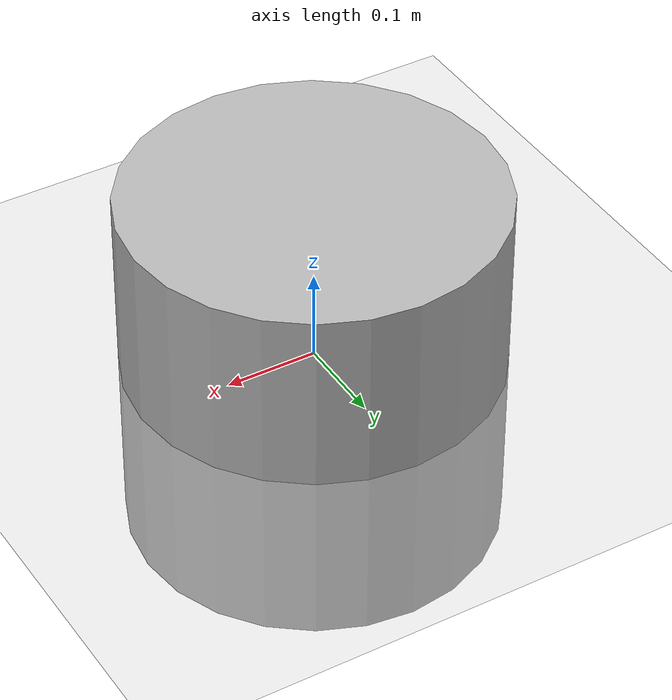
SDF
<?xml version="1.0"?>
<sdf version="1.4">
  <world name="target_spawn_world">

    <!-- Ground Plane -->
    <include>
      <uri>model://ground_plane</uri>
    </include>

    <include>
      <uri>model://sun</uri>
    </include>

    <model name="target_1">
      <pose>0 0 0 0 0 0</pose>
      <link name="link">
        <collision name="collision">
          <geometry>
            <cylinder>
              <radius> 0.001 </radius>
              <length> 0.4 </length>
            </cylinder>
          </geometry>
        </collision>

        <visual name="visual">
          <geometry>
            <cylinder>
              <radius> 0.2 </radius>
              <length> 0.4 </length>
            </cylinder>
          </geometry>
        </visual>
      </link>

      <plugin name="animated_box" filename="libanimated_box.so"/>
    </model>

    <model name="target_2">
      <pose>0 0 0 0 0 0</pose>
      <link name="link">
        <collision name="collision">
          <geometry>
            <cylinder>
              <radius> 0.001 </radius>
              <length> 0.4 </length>
            </cylinder>
          </geometry>
        </collision>

        <visual name="visual">
          <geometry>
            <cylinder>
              <radius> 0.2 </radius>
              <length> 0.4 </length>
            </cylinder>
          </geometry>
        </visual>
      </link>

      <plugin name="animated_box" filename="libanimated_box.so"/>
    </model>

    <model name="target_3">
      <pose>0 0 0 0 0 0</pose>
      <link name="link">
        <collision name="collision">
          <geometry>
            <cylinder>
              <radius> 0.001 </radius>
              <length> 0.4 </length>
            </cylinder>
          </geometry>
        </collision>

        <visual name="visual">
          <geometry>
            <cylinder>
              <radius> 0.2 </radius>
              <length> 0.4 </length>
            </cylinder>
          </geometry>
        </visual>
      </link>

      <plugin name="animated_box" filename="libanimated_box.so"/>
    </model>

    <model name="target_4">
      <pose>0 0 0 0 0 0</pose>
      <link name="link">
        <collision name="collision">
          <geometry>
            <cylinder>
              <radius> 0.001 </radius>
              <length> 0.4 </length>
            </cylinder>
          </geometry>
        </collision>

        <visual name="visual">
          <geometry>
            <cylinder>
              <radius> 0.2 </radius>
              <length> 0.4 </length>
            </cylinder>
          </geometry>
        </visual>
      </link>

      <plugin name="animated_box" filename="libanimated_box.so"/>
    </model>

    <model name="target_5">
      <pose>0 0 0 0 0 0</pose>
      <link name="link">
        <collision name="collision">
          <geometry>
            <cylinder>
              <radius> 0.001 </radius>
              <length> 0.4 </length>
            </cylinder>
          </geometry>
        </collision>

        <visual name="visual">
          <geometry>
            <cylinder>
              <radius> 0.2 </radius>
              <length> 0.4 </length>
            </cylinder>
          </geometry>
        </visual>
      </link>

      <plugin name="animated_box" filename="libanimated_box.so"/>
    </model>

    <model name="target_6">
      <pose>0 0 0 0 0 0</pose>
      <link name="link">
        <collision name="collision">
          <geometry>
            <cylinder>
              <radius> 0.001 </radius>
              <length> 0.4 </length>
            </cylinder>
          </geometry>
        </collision>

        <visual name="visual">
          <geometry>
            <cylinder>
              <radius> 0.2 </radius>
              <length> 0.4 </length>
            </cylinder>
          </geometry>
        </visual>
      </link>

      <plugin name="animated_box" filename="libanimated_box.so"/>
    </model>

    <model name="target_7">
      <pose>0 0 0 0 0 0</pose>
      <link name="link">
        <collision name="collision">
          <geometry>
            <cylinder>
              <radius> 0.001 </radius>
              <length> 0.4 </length>
            </cylinder>
          </geometry>
        </collision>

        <visual name="visual">
          <geometry>
            <cylinder>
              <radius> 0.2 </radius>
              <length> 0.4 </length>
            </cylinder>
          </geometry>
        </visual>
      </link>

      <plugin name="animated_box" filename="libanimated_box.so"/>
    </model>

    <model name="target_8">
      <pose>0 0 0 0 0 0</pose>
      <link name="link">
        <collision name="collision">
          <geometry>
            <cylinder>
              <radius> 0.001 </radius>
              <length> 0.4 </length>
            </cylinder>
          </geometry>
        </collision>

        <visual name="visual">
          <geometry>
            <cylinder>
              <radius> 0.2 </radius>
              <length> 0.4 </length>
            </cylinder>
          </geometry>
        </visual>
      </link>

      <plugin name="animated_box" filename="libanimated_box.so"/>
    </model>

    <model name="target_9">
      <pose>0 0 0 0 0 0</pose>
      <link name="link">
        <collision name="collision">
          <geometry>
            <cylinder>
              <radius> 0.001 </radius>
              <length> 0.4 </length>
            </cylinder>
          </geometry>
        </collision>

        <visual name="visual">
          <geometry>
            <cylinder>
              <radius> 0.2 </radius>
              <length> 0.4 </length>
            </cylinder>
          </geometry>
        </visual>
      </link>

      <plugin name="animated_box" filename="libanimated_box.so"/>
    </model>

    <model name="target_10">
      <pose>0 0 0 0 0 0</pose>
      <link name="link">
        <collision name="collision">
          <geometry>
            <cylinder>
              <radius> 0.001 </radius>
              <length> 0.4 </length>
            </cylinder>
          </geometry>
        </collision>

        <visual name="visual">
          <geometry>
            <cylinder>
              <radius> 0.2 </radius>
              <length> 0.4 </length>
            </cylinder>
          </geometry>
        </visual>
      </link>

      <plugin name="animated_box" filename="libanimated_box.so"/>
    </model>

    <model name="target_11">
      <pose>0 0 0 0 0 0</pose>
      <link name="link">
        <collision name="collision">
          <geometry>
            <cylinder>
              <radius> 0.001 </radius>
              <length> 0.4 </length>
            </cylinder>
          </geometry>
        </collision>

        <visual name="visual">
          <geometry>
            <cylinder>
              <radius> 0.2 </radius>
              <length> 0.4 </length>
            </cylinder>
          </geometry>
        </visual>
      </link>

      <plugin name="animated_box" filename="libanimated_box.so"/>
    </model>

    <model name="target_12">
      <pose>0 0 0 0 0 0</pose>
      <link name="link">
        <collision name="collision">
          <geometry>
            <cylinder>
              <radius> 0.001 </radius>
              <length> 0.4 </length>
            </cylinder>
          </geometry>
        </collision>

        <visual name="visual">
          <geometry>
            <cylinder>
              <radius> 0.2 </radius>
              <length> 0.4 </length>
            </cylinder>
          </geometry>
        </visual>
      </link>

      <plugin name="animated_box" filename="libanimated_box.so"/>
    </model>

    <model name="target_13">
      <pose>0 0 0 0 0 0</pose>
      <link name="link">
        <collision name="collision">
          <geometry>
            <cylinder>
              <radius> 0.001 </radius>
              <length> 0.4 </length>
            </cylinder>
          </geometry>
        </collision>

        <visual name="visual">
          <geometry>
            <cylinder>
              <radius> 0.2 </radius>
              <length> 0.4 </length>
            </cylinder>
          </geometry>
        </visual>
      </link>

      <plugin name="animated_box" filename="libanimated_box.so"/>
    </model>

    <model name="target_14">
      <pose>0 0 0 0 0 0</pose>
      <link name="link">
        <collision name="collision">
          <geometry>
            <cylinder>
              <radius> 0.001 </radius>
              <length> 0.4 </length>
            </cylinder>
          </geometry>
        </collision>

        <visual name="visual">
          <geometry>
            <cylinder>
              <radius> 0.2 </radius>
              <length> 0.4 </length>
            </cylinder>
          </geometry>
        </visual>
      </link>

      <plugin name="animated_box" filename="libanimated_box.so"/>
    </model>

    <model name="target_15">
      <pose>0 0 0 0 0 0</pose>
      <link name="link">
        <collision name="collision">
          <geometry>
            <cylinder>
              <radius> 0.001 </radius>
              <length> 0.4 </length>
            </cylinder>
          </geometry>
        </collision>

        <visual name="visual">
          <geometry>
            <cylinder>
              <radius> 0.2 </radius>
              <length> 0.4 </length>
            </cylinder>
          </geometry>
        </visual>
      </link>

      <plugin name="animated_box" filename="libanimated_box.so"/>
    </model>

    <model name="target_16">
      <pose>0 0 0 0 0 0</pose>
      <link name="link">
        <collision name="collision">
          <geometry>
            <cylinder>
              <radius> 0.001 </radius>
              <length> 0.4 </length>
            </cylinder>
          </geometry>
        </collision>

        <visual name="visual">
          <geometry>
            <cylinder>
              <radius> 0.2 </radius>
              <length> 0.4 </length>
            </cylinder>
          </geometry>
        </visual>
      </link>

      <plugin name="animated_box" filename="libanimated_box.so"/>
    </model>

    <model name="target_17">
      <pose>0 0 0 0 0 0</pose>
      <link name="link">
        <collision name="collision">
          <geometry>
            <cylinder>
              <radius> 0.001 </radius>
              <length> 0.4 </length>
            </cylinder>
          </geometry>
        </collision>

        <visual name="visual">
          <geometry>
            <cylinder>
              <radius> 0.2 </radius>
              <length> 0.4 </length>
            </cylinder>
          </geometry>
        </visual>
      </link>

      <plugin name="animated_box" filename="libanimated_box.so"/>
    </model>

    <model name="target_18">
      <pose>0 0 0 0 0 0</pose>
      <link name="link">
        <collision name="collision">
          <geometry>
            <cylinder>
              <radius> 0.001 </radius>
              <length> 0.4 </length>
            </cylinder>
          </geometry>
        </collision>

        <visual name="visual">
          <geometry>
            <cylinder>
              <radius> 0.2 </radius>
              <length> 0.4 </length>
            </cylinder>
          </geometry>
        </visual>
      </link>

      <plugin name="animated_box" filename="libanimated_box.so"/>
    </model>

    <model name="target_19">
      <pose>0 0 0 0 0 0</pose>
      <link name="link">
        <collision name="collision">
          <geometry>
            <cylinder>
              <radius> 0.001 </radius>
              <length> 0.4 </length>
            </cylinder>
          </geometry>
        </collision>

        <visual name="visual">
          <geometry>
            <cylinder>
              <radius> 0.2 </radius>
              <length> 0.4 </length>
            </cylinder>
          </geometry>
        </visual>
      </link>

      <plugin name="animated_box" filename="libanimated_box.so"/>
    </model>

    <model name="target_20">
      <pose>0 0 0 0 0 0</pose>
      <link name="link">
        <collision name="collision">
          <geometry>
            <cylinder>
              <radius> 0.001 </radius>
              <length> 0.4 </length>
            </cylinder>
          </geometry>
        </collision>

        <visual name="visual">
          <geometry>
            <cylinder>
              <radius> 0.2 </radius>
              <length> 0.4 </length>
            </cylinder>
          </geometry>
        </visual>
      </link>

      <plugin name="animated_box" filename="libanimated_box.so"/>
    </model>

    <model name="target_21">
      <pose>0 0 0 0 0 0</pose>
      <link name="link">
        <collision name="collision">
          <geometry>
            <cylinder>
              <radius> 0.001 </radius>
              <length> 0.4 </length>
            </cylinder>
          </geometry>
        </collision>

        <visual name="visual">
          <geometry>
            <cylinder>
              <radius> 0.2 </radius>
              <length> 0.4 </length>
            </cylinder>
          </geometry>
        </visual>
      </link>

      <plugin name="animated_box" filename="libanimated_box.so"/>
    </model>

    <model name="target_22">
      <pose>0 0 0 0 0 0</pose>
      <link name="link">
        <collision name="collision">
          <geometry>
            <cylinder>
              <radius> 0.001 </radius>
              <length> 0.4 </length>
            </cylinder>
          </geometry>
        </collision>

        <visual name="visual">
          <geometry>
            <cylinder>
              <radius> 0.2 </radius>
              <length> 0.4 </length>
            </cylinder>
          </geometry>
        </visual>
      </link>

      <plugin name="animated_box" filename="libanimated_box.so"/>
    </model>

    <model name="target_23">
      <pose>0 0 0 0 0 0</pose>
      <link name="link">
        <collision name="collision">
          <geometry>
            <cylinder>
              <radius> 0.001 </radius>
              <length> 0.4 </length>
            </cylinder>
          </geometry>
        </collision>

        <visual name="visual">
          <geometry>
            <cylinder>
              <radius> 0.2 </radius>
              <length> 0.4 </length>
            </cylinder>
          </geometry>
        </visual>
      </link>

      <plugin name="animated_box" filename="libanimated_box.so"/>
    </model>

    <model name="target_24">
      <pose>0 0 0 0 0 0</pose>
      <link name="link">
        <collision name="collision">
          <geometry>
            <cylinder>
              <radius> 0.001 </radius>
              <length> 0.4 </length>
            </cylinder>
          </geometry>
        </collision>

        <visual name="visual">
          <geometry>
            <cylinder>
              <radius> 0.2 </radius>
              <length> 0.4 </length>
            </cylinder>
          </geometry>
        </visual>
      </link>

      <plugin name="animated_box" filename="libanimated_box.so"/>
    </model>

    <model name="target_25">
      <pose>0 0 0 0 0 0</pose>
      <link name="link">
        <collision name="collision">
          <geometry>
            <cylinder>
              <radius> 0.001 </radius>
              <length> 0.4 </length>
            </cylinder>
          </geometry>
        </collision>

        <visual name="visual">
          <geometry>
            <cylinder>
              <radius> 0.2 </radius>
              <length> 0.4 </length>
            </cylinder>
          </geometry>
        </visual>
      </link>

      <plugin name="animated_box" filename="libanimated_box.so"/>
    </model>

    <model name="target_26">
      <pose>0 0 0 0 0 0</pose>
      <link name="link">
        <collision name="collision">
          <geometry>
            <cylinder>
              <radius> 0.001 </radius>
              <length> 0.4 </length>
            </cylinder>
          </geometry>
        </collision>

        <visual name="visual">
          <geometry>
            <cylinder>
              <radius> 0.2 </radius>
              <length> 0.4 </length>
            </cylinder>
          </geometry>
        </visual>
      </link>

      <plugin name="animated_box" filename="libanimated_box.so"/>
    </model>

    <model name="target_27">
      <pose>0 0 0 0 0 0</pose>
      <link name="link">
        <collision name="collision">
          <geometry>
            <cylinder>
              <radius> 0.001 </radius>
              <length> 0.4 </length>
            </cylinder>
          </geometry>
        </collision>

        <visual name="visual">
          <geometry>
            <cylinder>
              <radius> 0.2 </radius>
              <length> 0.4 </length>
            </cylinder>
          </geometry>
        </visual>
      </link>

      <plugin name="animated_box" filename="libanimated_box.so"/>
    </model>

    <model name="target_28">
      <pose>0 0 0 0 0 0</pose>
      <link name="link">
        <collision name="collision">
          <geometry>
            <cylinder>
              <radius> 0.001 </radius>
              <length> 0.4 </length>
            </cylinder>
          </geometry>
        </collision>

        <visual name="visual">
          <geometry>
            <cylinder>
              <radius> 0.2 </radius>
              <length> 0.4 </length>
            </cylinder>
          </geometry>
        </visual>
      </link>

      <plugin name="animated_box" filename="libanimated_box.so"/>
    </model>

    <model name="target_29">
      <pose>0 0 0 0 0 0</pose>
      <link name="link">
        <collision name="collision">
          <geometry>
            <cylinder>
              <radius> 0.001 </radius>
              <length> 0.4 </length>
            </cylinder>
          </geometry>
        </collision>

        <visual name="visual">
          <geometry>
            <cylinder>
              <radius> 0.2 </radius>
              <length> 0.4 </length>
            </cylinder>
          </geometry>
        </visual>
      </link>

      <plugin name="animated_box" filename="libanimated_box.so"/>
    </model>

    <model name="target_30">
      <pose>0 0 0 0 0 0</pose>
      <link name="link">
        <collision name="collision">
          <geometry>
            <cylinder>
              <radius> 0.001 </radius>
              <length> 0.4 </length>
            </cylinder>
          </geometry>
        </collision>

        <visual name="visual">
          <geometry>
            <cylinder>
              <radius> 0.2 </radius>
              <length> 0.4 </length>
            </cylinder>
          </geometry>
        </visual>
      </link>

      <plugin name="animated_box" filename="libanimated_box.so"/>
    </model>

  </world>
</sdf>
